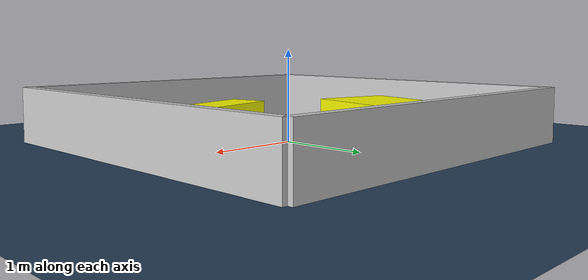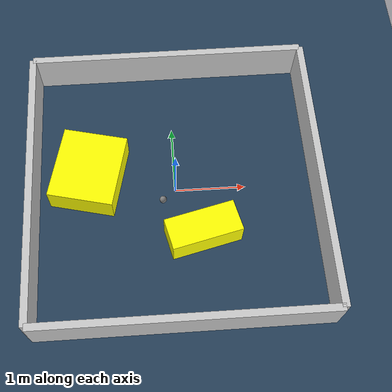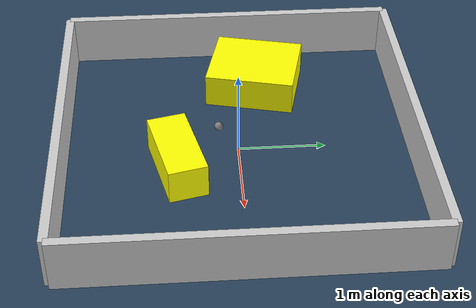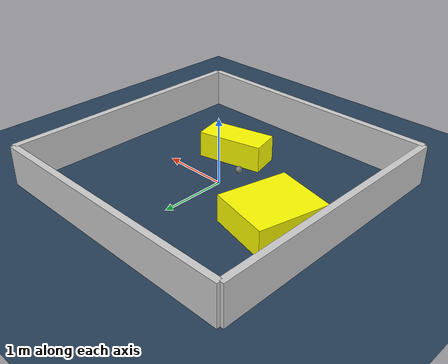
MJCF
<?xml version="1.0" ?>
<mujoco model="generated_environment">
  <option timestep="0.01" integrator="RK4" cone="elliptic"/>
  <default>
    <geom density="1"/>
  </default>
  <asset>
    <texture builtin="gradient" height="3072" rgb1="0.3 0.5 0.7" rgb2="0 0 0" type="skybox" width="512"/>
    <texture builtin="checker" height="300" mark="edge" markrgb="0.8 0.8 0.8" name="groundplane" rgb1="0.2 0.3 0.4" rgb2="0.1 0.2 0.3" type="2d" width="300"/>
    <material name="groundplane" reflectance="0.2" texrepeat="5 5" texture="groundplane" texuniform="true"/>
    <material name="robot" rgba="0.0 1.0 0.0 1"/>
  </asset>
  <worldbody>
    <light dir="0 0 -1" directional="true" pos="0 0 1.5"/>
    <geom condim="4" friction="1.0 0.005 0.001" material="groundplane" name="floor" size="0 0 0.05" type="plane"/>
    <body name="walls">
      <geom name="wall_1" condim="4" pos="-2.0 0.0 0.3" rgba="0.800000011920929 0.800000011920929 0.800000011920929 1.0" size="0.05 2.0 0.3" type="box"/>
      <geom name="wall_2" condim="4" pos="2.0 0.0 0.3" rgba="0.800000011920929 0.800000011920929 0.800000011920929 1.0" size="0.05 2.0 0.3" type="box"/>
      <geom name="wall_3" condim="4" pos="0.0 -2.0 0.3" rgba="0.800000011920929 0.800000011920929 0.800000011920929 1.0" size="2.0 0.05 0.3" type="box"/>
      <geom name="wall_4" condim="4" pos="0.0 2.0 0.3" rgba="0.800000011920929 0.800000011920929 0.800000011920929 1.0" size="2.0 0.05 0.3" type="box"/>
    </body>
    <body name="robot">
      <joint name="joint_x" type="slide" pos="0 0 0" axis="1 0 0"/>
      <joint name="joint_y" type="slide" pos="0 0 0" axis="0 1 0"/>
      <geom name="robot" type="sphere" pos="-0.1868772684499198 -0.21387252079321106 0.2" size="0.05" mass="5." friction="1.0 0.005 0.0001" condim="4"/>
      <site name="sensor_ball"/>
    </body>
    <body name="obstacle_1_movable">
      <geom name="obstacle_1_movable" condim="4" pos="-1.221222955647669 0.28214499112778557 0.2" euler="0 0 76.62941457885998" friction="1.0 0.005 0.001" rgba="1 1 0 1" size="0.5280936044320139 0.46123206274963735 0.2" type="box" mass="0.1"/>
      <joint type="free"/>
    </body>
    <body name="obstacle_2_movable">
      <geom name="obstacle_2_movable" condim="4" pos="0.33544587005482507 -0.7046527776606463 0.2" euler="0 0 283.5039657780625" friction="1.0 0.005 0.001" rgba="1 1 0 1" size="0.223068966014944 0.4978600331362668 0.2" type="box" mass="0.1"/>
      <joint type="free"/>
    </body>
  </worldbody>
  <actuator>
    <motor name="actuator_x" joint="joint_x" gear="1" ctrlrange="-1 1"/>
    <motor name="actuator_y" joint="joint_y" gear="1" ctrlrange="-1 1"/>
  </actuator>
</mujoco>
